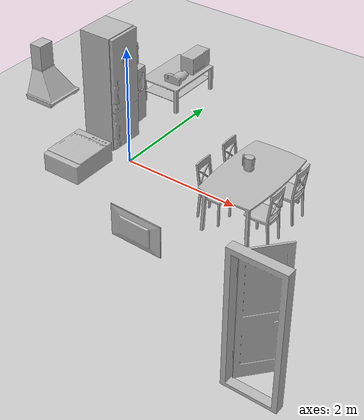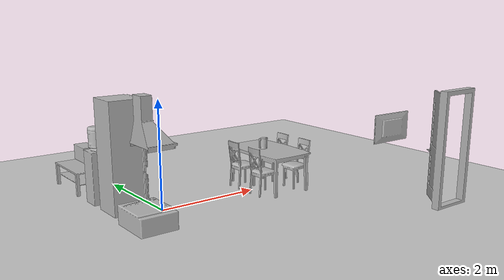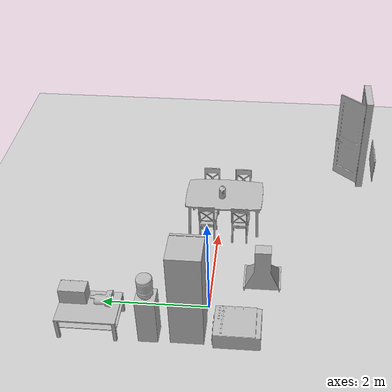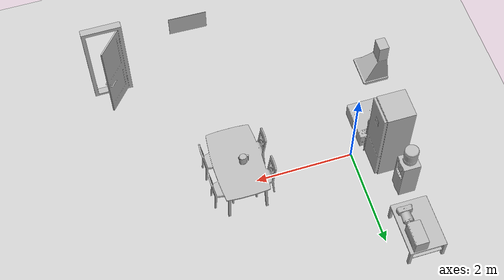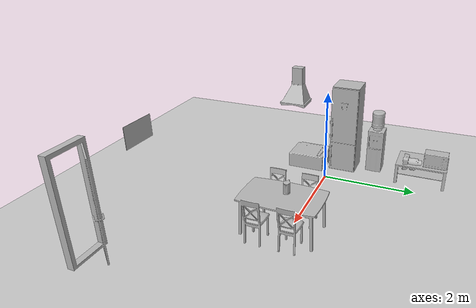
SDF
<sdf version="1.4">
 <world name="default">
  <light name="sun" type="directional">
   <pose>0 0 10 0 -0 0</pose>
   <diffuse>0.8 0.8 0.8 1</diffuse>
   <specular>0.2 0.2 0.2 1</specular>
   <attenuation>
    <range>1000</range>
    <constant>0.9</constant>
    <linear>0.01</linear>
    <quadratic>0.001</quadratic>
   </attenuation>
   <direction>-0.5 0.1 -0.9</direction>
  </light>
  <model name="ground_plane">
   <static>1</static>
   <link name="link">
    <collision name="collision">
     <geometry><plane><normal>0 0 1</normal><size>100 100</size></plane></geometry>
     <surface><friction><ode><mu>100</mu><mu2>50</mu2></ode></friction></surface>
    </collision>
    <visual name="visual">
     <cast_shadows>0</cast_shadows>
     <geometry><plane><normal>0 0 1</normal><size>100 100</size></plane></geometry>
     <material>
      <script><uri>file://media/materials/scripts/gazebo.material</uri><name>Gazebo/Grey</name></script>
     </material>
    </visual>
    <velocity_decay><linear>0</linear><angular>0</angular></velocity_decay>
   </link>
  </model>
  <physics type="ode">
   <max_step_size>0.001</max_step_size>
   <real_time_factor>1</real_time_factor>
   <real_time_update_rate>1000</real_time_update_rate>
   <gravity>0 0 -9.8</gravity>
  </physics>
  <scene><ambient>0.4 0.4 0.4 1</ambient><background>0.7 0.7 0.7 1</background><shadows>1</shadows></scene>
  <spherical_coordinates>
   <surface_model>EARTH_WGS84</surface_model>
   <latitude_deg>0</latitude_deg>
   <longitude_deg>0</longitude_deg>
   <elevation>0</elevation>
   <heading_deg>0</heading_deg>
  </spherical_coordinates>
  <model name="122_0">
   <pose>4.25289 -2.9821 0.02 0 0 -1.57278</pose>
   <static>1</static>
   <link name="link">
    <collision name="collision"><geometry><box><size>0.650001 0.8 2</size></box></geometry></collision>
    <visual name="visual"><geometry><mesh><uri>model://122/122.dae</uri></mesh></geometry></visual>
    <velocity_decay><linear>0</linear><angular>0</angular></velocity_decay>
   </link>
  </model>
  <model name="134_0">
   <pose>2.36093 -0.09755 0.05 0 -0 0</pose>
   <static>1</static>
   <link name="link">
    <collision name="collision"><geometry><box><size>1.31043 1.55 2</size></box></geometry></collision>
    <visual name="visual"><geometry><mesh><uri>model://134/134.dae</uri></mesh></geometry></visual>
    <velocity_decay><linear>0</linear><angular>0</angular></velocity_decay>
   </link>
  </model>
  <model name="264_0">
   <pose>-0.58364 -0.983972 0.05 0 -0 0</pose>
   <static>1</static>
   <link name="link">
    <collision name="collision"><geometry><box><size>0.589299 0.69 2</size></box></geometry></collision>
    <visual name="visual"><geometry><mesh><uri>model://264/264.dae</uri></mesh></geometry></visual>
    <velocity_decay><linear>0</linear><angular>0</angular></velocity_decay>
   </link>
  </model>
  <model name="102_0">
   <pose>-0.595638 0.298228 0.05 0 -0 0</pose>
   <static>1</static>
   <link name="link">
    <collision name="collision"><geometry><box><size>0.685405 0.599801 2</size></box></geometry></collision>
    <visual name="visual"><geometry><mesh><uri>model://102/102.dae</uri></mesh></geometry></visual>
    <velocity_decay><linear>0</linear><angular>0</angular></velocity_decay>
   </link>
  </model>
  <model name="206_0">
   <pose>-0.751644 0.98223 0.05 0 -0 0</pose>
   <static>1</static>
   <link name="link">
    <collision name="collision"><geometry><box><size>0.36 0.35 2</size></box></geometry></collision>
    <visual name="visual"><geometry><mesh><uri>model://206/206.dae</uri></mesh></geometry></visual>
    <velocity_decay><linear>0</linear><angular>0</angular></velocity_decay>
   </link>
  </model>
  <model name="109_0">
   <pose>-0.58364 2.06223 0.05 0 -0 0</pose>
   <static>1</static>
   <link name="link">
    <collision name="collision"><geometry><box><size>0.75 1.08 2</size></box></geometry></collision>
    <visual name="visual"><geometry><mesh><uri>model://109/109.dae</uri></mesh></geometry></visual>
    <velocity_decay><linear>0</linear><angular>0</angular></velocity_decay>
   </link>
  </model>
  <model name="220_0">
   <pose>-0.427634 1.66623 0.5 0 -0 0</pose>
   <static>1</static>
   <link name="link">
    <collision name="collision"><geometry><box><size>0.29 0.31 2</size></box></geometry></collision>
    <visual name="visual"><geometry><mesh><uri>model://220/220.dae</uri></mesh></geometry></visual>
    <velocity_decay><linear>0</linear><angular>0</angular></velocity_decay>
   </link>
  </model>
  <model name="343_0">
   <pose>2.25216 -0.058523 0.821563 0 -0 0</pose>
   <static>1</static>
   <link name="link">
    <collision name="collision"><geometry><box><size>0.209506 0.13 2</size></box></geometry></collision>
    <visual name="visual"><geometry><mesh><uri>model://343/343.dae</uri></mesh></geometry></visual>
    <velocity_decay><linear>0</linear><angular>0</angular></velocity_decay>
   </link>
  </model>
  <model name="222_0">
   <pose>-0.419528 2.34177 0.5 0 -0 0</pose>
   <static>1</static>
   <link name="link">
    <collision name="collision"><geometry><box><size>0.27 0.49 2</size></box></geometry></collision>
    <visual name="visual"><geometry><mesh><uri>model://222/222.dae</uri></mesh></geometry></visual>
    <velocity_decay><linear>0</linear><angular>0</angular></velocity_decay>
   </link>
  </model>
  <model name="241_0">
   <pose>-0.631637 -0.96112 1.43 0 -0 0</pose>
   <static>1</static>
   <link name="link">
    <collision name="collision"><geometry><box><size>0.51 0.6 2</size></box></geometry></collision>
    <visual name="visual"><geometry><mesh><uri>model://241/241.dae</uri></mesh></geometry></visual>
    <velocity_decay><linear>0</linear><angular>0</angular></velocity_decay>
   </link>
  </model>
  <model name="111_0">
   <pose>2.53734 -2.98568 1.45 0 -0 1.54386</pose>
   <static>1</static>
   <link name="link">
    <collision name="collision"><geometry><box><size>0.047027 0.76016 2</size></box></geometry></collision>
    <visual name="visual"><geometry><mesh><uri>model://111/111.dae</uri></mesh></geometry></visual>
    <velocity_decay><linear>0</linear><angular>0</angular></velocity_decay>
   </link>
  </model>
 </world>
</sdf>
